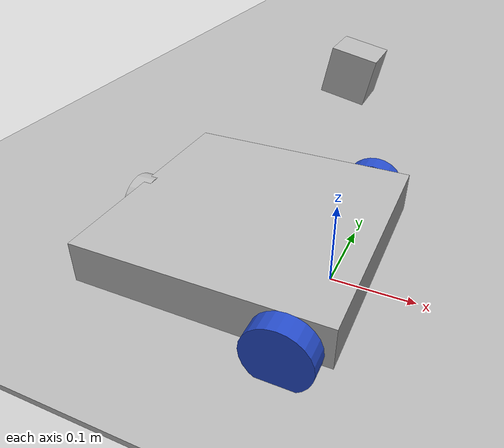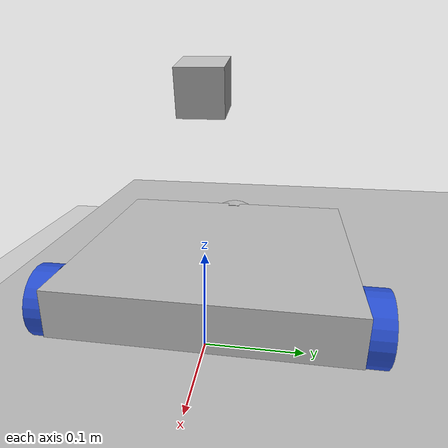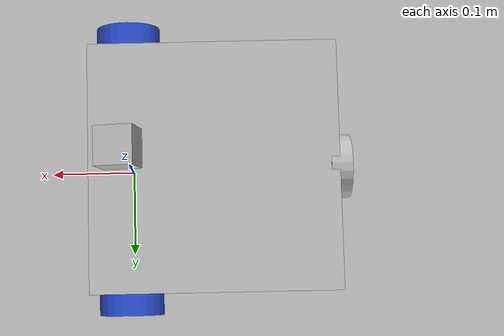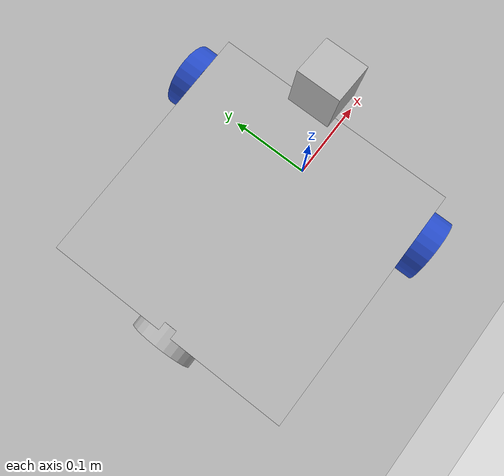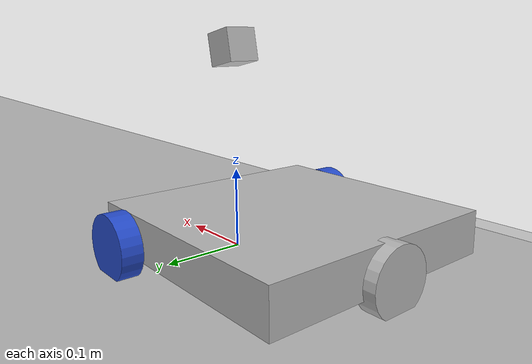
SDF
<sdf version="1.6">
 <world name="default">
  <model name="ground_plane">
   <static>1</static>
   <link name="link">
    <collision name="collision">
     <geometry><plane><normal>0 0 1</normal><size>100 100</size></plane></geometry>
     <surface>
      <contact><collide_bitmask>65535</collide_bitmask></contact>
      <friction><ode><mu>100</mu><mu2>50</mu2></ode></friction>
     </surface>
    </collision>
    <visual name="visual">
     <cast_shadows>0</cast_shadows>
     <geometry><plane><normal>0 0 1</normal><size>100 100</size></plane></geometry>
     <material>
      <script><uri>file://media/materials/scripts/gazebo.material</uri><name>Gazebo/Grey</name></script>
     </material>
    </visual>
   </link>
  </model>
  <gravity>0 0 -9.8</gravity>
  <magnetic_field>6e-06 2.3e-05 -4.2e-05</magnetic_field>
  <atmosphere type="adiabatic"/>
  <physics name="default_physics" default="0" type="ode">
   <max_step_size>0.001</max_step_size>
   <real_time_factor>1</real_time_factor>
   <real_time_update_rate>1000</real_time_update_rate>
  </physics>
  <scene><ambient>0.4 0.4 0.4 1</ambient><background>0.7 0.7 0.7 1</background><shadows>1</shadows></scene>
  <audio><device>default</device></audio>
  <spherical_coordinates>
   <surface_model>EARTH_WGS84</surface_model>
   <latitude_deg>0</latitude_deg>
   <longitude_deg>0</longitude_deg>
   <elevation>0</elevation>
   <heading_deg>0</heading_deg>
  </spherical_coordinates>
  <model name="aruco_map">
   <pose>1.85573 3.73645 0.001926 0 0 -1.56362</pose>
   <static>1</static>
   <link name="link">
    <visual name="visual"><geometry><mesh><uri>model://map/meshes/map.dae</uri></mesh></geometry></visual>
   </link>
  </model>
  <light name="user_point_light_0" type="point">
   <pose>1.25154 3.40382 1 0 -0 0</pose>
   <diffuse>0.5 0.5 0.5 1</diffuse>
   <specular>0.1 0.1 0.1 1</specular>
   <attenuation>
    <range>20</range>
    <constant>0.5</constant>
    <linear>0.01</linear>
    <quadratic>0.001</quadratic>
   </attenuation>
   <cast_shadows>0</cast_shadows>
   <direction>0 0 -1</direction>
  </light>
  <light name="user_directional_light_0" type="directional">
   <pose>0.38139 4.93156 1 0 -0 0</pose>
   <diffuse>0.5 0.5 0.5 1</diffuse>
   <specular>0.1 0.1 0.1 1</specular>
   <direction>0.1 0.1 -0.9</direction>
   <attenuation>
    <range>20</range>
    <constant>0.5</constant>
    <linear>0.01</linear>
    <quadratic>0.001</quadratic>
   </attenuation>
  </light>
  <light name="user_directional_light_1" type="directional">
   <pose>-2.51983 7.48431 1 0 -0 0</pose>
   <diffuse>0.5 0.5 0.5 1</diffuse>
   <specular>0.1 0.1 0.1 1</specular>
   <direction>0.1 0.1 -0.9</direction>
   <attenuation>
    <range>20</range>
    <constant>0.5</constant>
    <linear>0.01</linear>
    <quadratic>0.001</quadratic>
   </attenuation>
  </light>
  <light name="user_point_light_0_clone" type="point">
   <pose>2.29011 0.449297 4 0 -0 0</pose>
   <diffuse>1 1 1 1</diffuse>
   <specular>0.0901961 0.0901961 0.0901961 1</specular>
   <direction>0 0 -1</direction>
   <attenuation>
    <range>15</range>
    <constant>0.2</constant>
    <linear>0.01</linear>
    <quadratic>0.001</quadratic>
   </attenuation>
   <cast_shadows>0</cast_shadows>
  </light>
  <model name="autonet_v1">
   <link name="base_link">
    <inertial>
     <pose>-0.099998 0 0.050003 0 -0 0</pose>
     <mass>0.50001</mass>
     <inertia>
      <ixx>0.20621</ixx>
      <ixy>0</ixy>
      <ixz>-1.49997e-07</ixz>
      <iyy>0.20621</iyy>
      <iyz>0</iyz>
      <izz>0.206209</izz>
     </inertia>
    </inertial>
    <collision name="base_link_fixed_joint_lump__collision_chassis_collision">
     <geometry><box><size>0.295 0.295 0.05</size></box></geometry>
    </collision>
    <collision name="base_link_fixed_joint_lump__caster_front_collision_collision_1">
     <pose>0.05 0 -0.012 3.14159 1.57079 3.14159</pose>
     <geometry><cylinder><length>0.025</length><radius>0.038</radius></cylinder></geometry>
    </collision>
    <collision name="base_link_fixed_joint_lump__caster_back_collision_collision_2">
     <pose>-0.25 0 -0.012 3.14159 1.57079 3.14159</pose>
     <geometry><cylinder><length>0.025</length><radius>0.038</radius></cylinder></geometry>
    </collision>
    <collision name="base_link_fixed_joint_lump__camera_link_collision_3">
     <pose>0 0 0.2 0 0.2 0</pose>
     <geometry><box><size>0.04 0.04 0.04</size></box></geometry>
    </collision>
    <visual name="base_link_visual">
     <pose>-0.1 0 0 0 -0 0</pose>
     <geometry><box><size>0.295 0.295 0.05</size></box></geometry>
    </visual>
    <visual name="base_link_fixed_joint_lump__caster_back_visual_visual_1">
     <pose>-0.25 0 -0.012 3.14159 1.57079 3.14159</pose>
     <geometry><cylinder><length>0.025</length><radius>0.038</radius></cylinder></geometry>
    </visual>
    <visual name="base_link_fixed_joint_lump__camera_link_visual_2">
     <pose>0 0 0.2 0 0.2 0</pose>
     <geometry><box><size>0.04 0.04 0.04</size></box></geometry>
     <material><script><uri>__default__</uri><name>__default__</name></script></material>
    </visual>
    <sensor name="camera1" type="camera">
     <update_rate>30</update_rate>
     <camera name="head">
      <horizontal_fov>1.39626</horizontal_fov>
      <image><width>640</width><height>480</height><format>R8G8B8</format></image>
      <clip><near>0.02</near><far>300</far></clip>
      <noise><type>gaussian</type><mean>0</mean><stddev>0.007</stddev></noise>
     </camera>
     <plugin name="camera_controller" filename="libgazebo_ros_camera.so">
      <alwaysOn>1</alwaysOn>
      <updateRate>0.0</updateRate>
      <cameraName>camera1</cameraName>
      <imageTopicName>image_raw</imageTopicName>
      <cameraInfoTopicName>camera_info</cameraInfoTopicName>
      <frameName>camera_link</frameName>
      <hackBaseline>0.07</hackBaseline>
      <distortionK1>0.0</distortionK1>
      <distortionK2>0.0</distortionK2>
      <distortionK3>0.0</distortionK3>
      <distortionT1>0.0</distortionT1>
      <distortionT2>0.0</distortionT2>
      <robotNamespace>/</robotNamespace>
     </plugin>
     <pose>0 0 0.2 0 0.2 0</pose>
    </sensor>
   </link>
   <link name="link_left_wheel">
    <pose>0 -0.16 -0.012 0 -0 0</pose>
    <inertial>
     <pose>0 0 0 -0 1.5707 1.5707</pose>
     <mass>50</mass>
     <inertia>
      <ixx>0.000526667</ixx>
      <ixy>0</ixy>
      <ixz>0</ixz>
      <iyy>0.000526667</iyy>
      <iyz>0</iyz>
      <izz>0.001</izz>
     </inertia>
    </inertial>
    <collision name="link_left_wheel_fixed_joint_lump__link_link_left_wheel_wheel_collision_collision">
     <pose>0 0 0 3.14159 1.57079 -1.57089</pose>
     <geometry><cylinder><length>0.025</length><radius>0.038</radius></cylinder></geometry>
    </collision>
    <visual name="link_left_wheel_visual_visual">
     <pose>0 0 0 3.14159 1.57079 -1.57089</pose>
     <geometry><cylinder><length>0.025</length><radius>0.038</radius></cylinder></geometry>
     <material>
      <script><name>Gazebo/Blue</name><uri>file://media/materials/scripts/gazebo.material</uri></script>
     </material>
    </visual>
   </link>
   <joint name="joint_left_wheel" type="revolute">
    <child>link_left_wheel</child>
    <parent>base_link</parent>
    <axis>
     <xyz>0 1 0</xyz>
     <limit><lower>-1e+16</lower><upper>1e+16</upper></limit>
     <dynamics><spring_reference>0</spring_reference><spring_stiffness>0</spring_stiffness></dynamics>
     <use_parent_model_frame>1</use_parent_model_frame>
    </axis>
   </joint>
   <link name="link_right_wheel">
    <pose>0 0.16 -0.012 0 -0 0</pose>
    <inertial>
     <pose>0 0 0 -0 1.5707 1.5707</pose>
     <mass>50</mass>
     <inertia>
      <ixx>0.000526667</ixx>
      <ixy>0</ixy>
      <ixz>0</ixz>
      <iyy>0.000526667</iyy>
      <iyz>0</iyz>
      <izz>0.001</izz>
     </inertia>
    </inertial>
    <collision name="link_right_wheel_fixed_joint_lump__link_link_right_wheel_wheel_collision_collision">
     <pose>0 0 0 3.14159 1.57079 -1.57089</pose>
     <geometry><cylinder><length>0.025</length><radius>0.038</radius></cylinder></geometry>
    </collision>
    <visual name="link_right_wheel_visual_visual">
     <pose>0 0 0 3.14159 1.57079 -1.57089</pose>
     <geometry><cylinder><length>0.025</length><radius>0.038</radius></cylinder></geometry>
     <material>
      <script><name>Gazebo/Blue</name><uri>file://media/materials/scripts/gazebo.material</uri></script>
     </material>
    </visual>
   </link>
   <joint name="joint_right_wheel" type="revolute">
    <child>link_right_wheel</child>
    <parent>base_link</parent>
    <axis>
     <xyz>0 1 0</xyz>
     <limit><lower>-1e+16</lower><upper>1e+16</upper></limit>
     <dynamics><spring_reference>0</spring_reference><spring_stiffness>0</spring_stiffness></dynamics>
     <use_parent_model_frame>1</use_parent_model_frame>
    </axis>
   </joint>
   <static>0</static>
   <plugin name="differential_drive_controller" filename="libgazebo_ros_diff_drive.so">
    <alwaysOn>1</alwaysOn>
    <updateRate>20</updateRate>
    <leftJoint>joint_left_wheel</leftJoint>
    <rightJoint>joint_right_wheel</rightJoint>
    <wheelSeparation>0.32</wheelSeparation>
    <wheelDiameter>0.076</wheelDiameter>
    <torque>20</torque>
    <commandTopic>cmd_vel</commandTopic>
    <odometryTopic>odom</odometryTopic>
    <odometryFrame>odom</odometryFrame>
    <robotBaseFrame>base_link</robotBaseFrame>
    <robotNamespace>/</robotNamespace>
   </plugin>
   <pose>0.002567 0.000348 0.05 2e-06 4e-06 -4.2e-05</pose>
  </model>
 </world>
</sdf>
